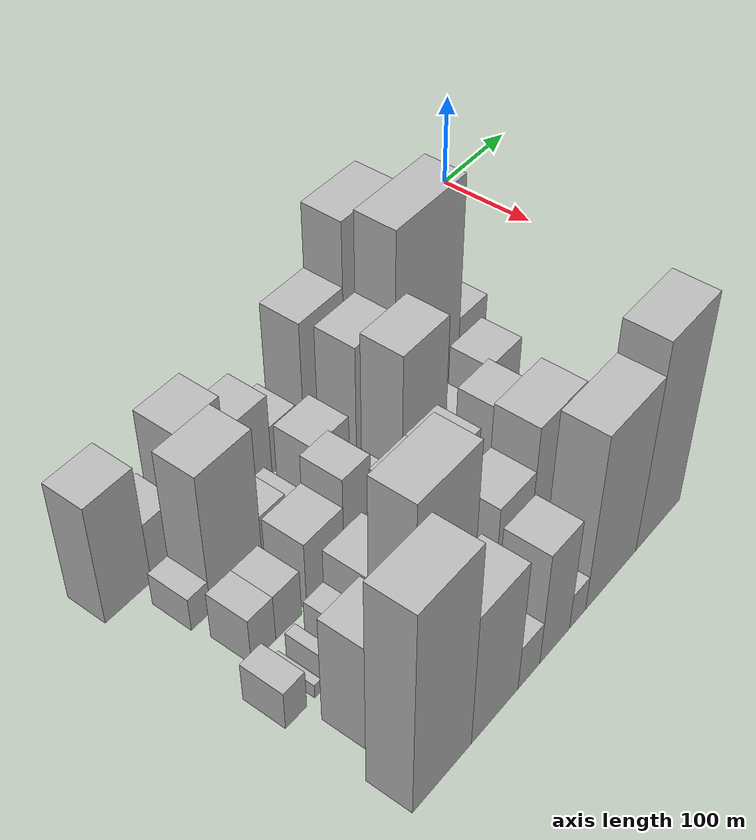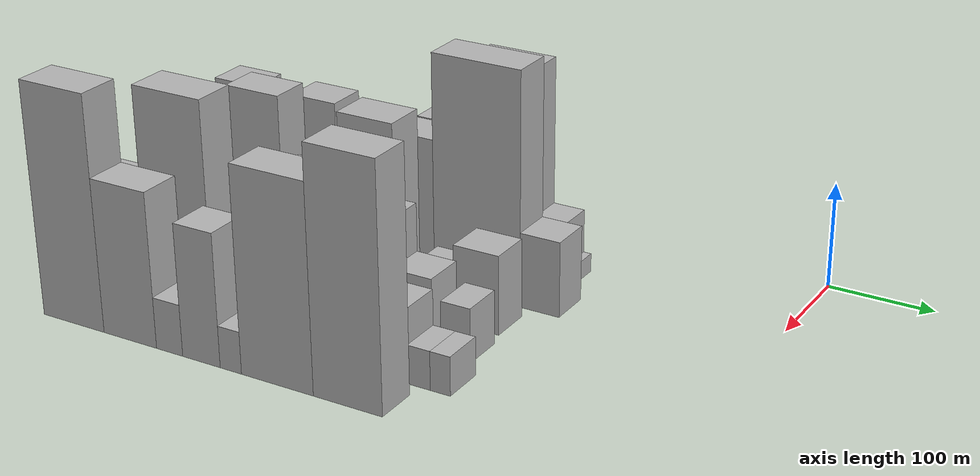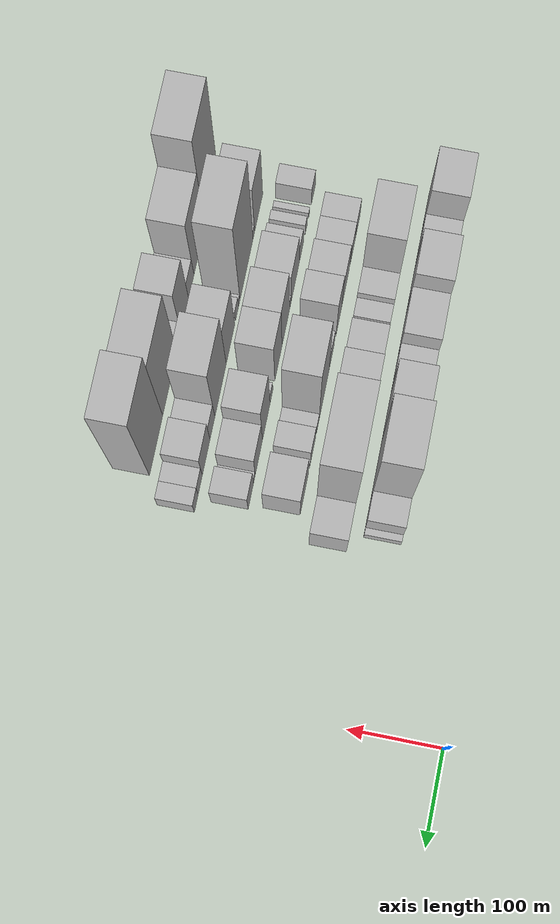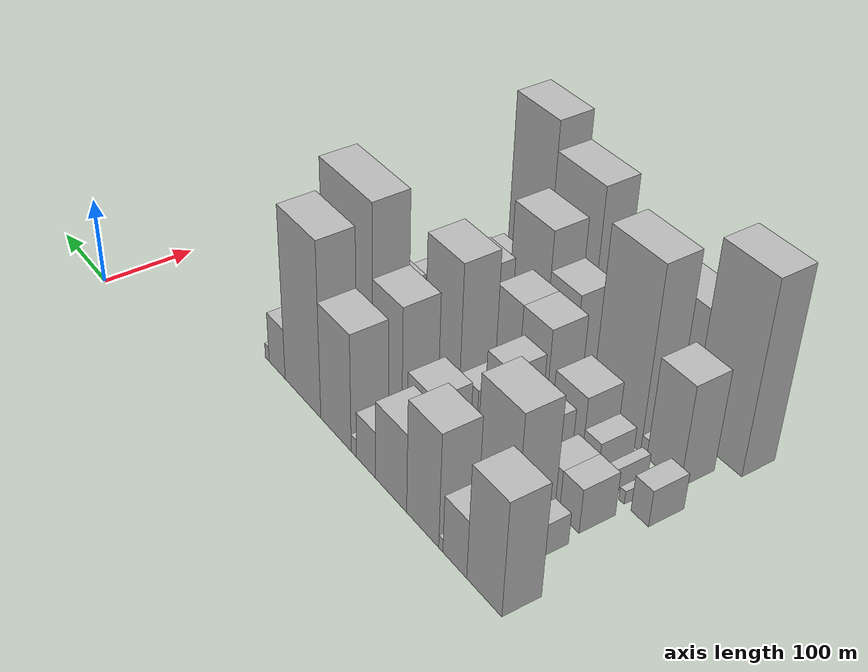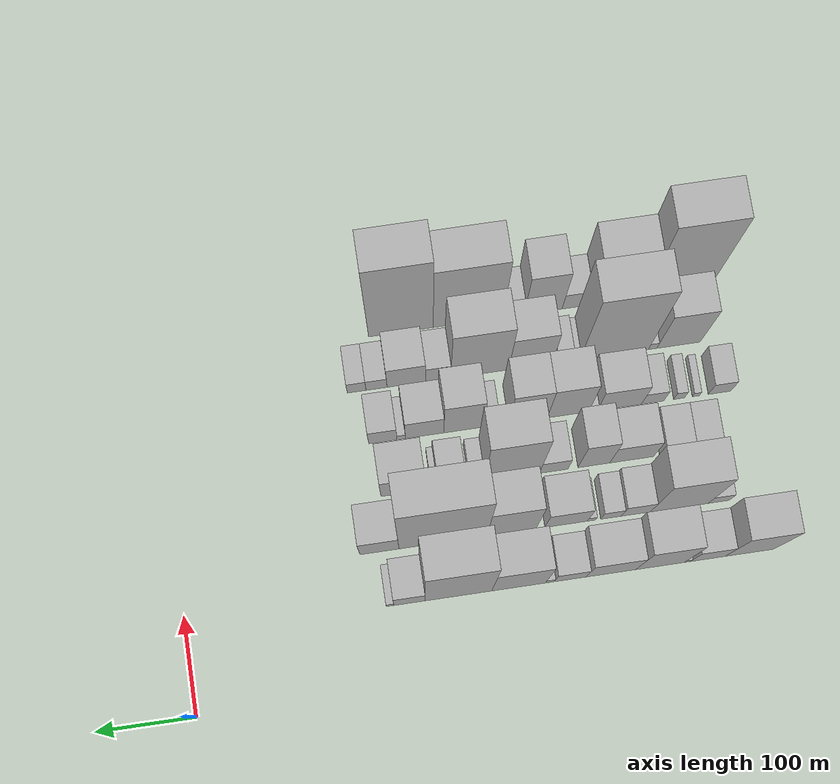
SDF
<sdf version="1.6">
 <world name="default">
  <model name="building_10">
   <static>1</static>
   <pose>100.0000 -564.8110 0 0.000000 0.000000 0.000000</pose>
   <link name="link">
    <pose>0 0 64.50 0 0 0</pose>
    <collision name="collision"><geometry><box><size>40.0000 49.0566 129.0000</size></box></geometry></collision>
    <visual name="visual">
     <cast_shadows>0</cast_shadows>
     <geometry><box><size>40.0000 49.0566 129.0000</size></box></geometry>
     <material>
      <script>
       <uri>model://HANNAS_wall/materials/scripts</uri>
       <uri>model://HANNAS_wall/materials/textures</uri>
       <name>vrc/HANNAS_wall</name>
      </script>
     </material>
    </visual>
   </link>
  </model>
  <model name="building_11">
   <static>1</static>
   <pose>100.0000 -522.8682 0 0.000000 0.000000 0.000000</pose>
   <link name="link">
    <pose>0 0 33.00 0 0 0</pose>
    <collision name="collision"><geometry><box><size>40.0000 34.8290 66.0000</size></box></geometry></collision>
    <visual name="visual">
     <cast_shadows>0</cast_shadows>
     <geometry><box><size>40.0000 34.8290 66.0000</size></box></geometry>
     <material>
      <script>
       <uri>model://HANNAS_wall/materials/scripts</uri>
       <uri>model://HANNAS_wall/materials/textures</uri>
       <name>vrc/HANNAS_wall</name>
      </script>
     </material>
    </visual>
   </link>
  </model>
  <model name="building_12">
   <static>1</static>
   <pose>100.0000 -502.3268 0 0.000000 0.000000 0.000000</pose>
   <link name="link">
    <pose>0 0 7.50 0 0 0</pose>
    <collision name="collision"><geometry><box><size>40.0000 6.2540 15.0000</size></box></geometry></collision>
    <visual name="visual">
     <cast_shadows>0</cast_shadows>
     <geometry><box><size>40.0000 6.2540 15.0000</size></box></geometry>
     <material>
      <script>
       <uri>model://HANNAS_wall/materials/scripts</uri>
       <uri>model://HANNAS_wall/materials/textures</uri>
       <name>vrc/HANNAS_wall</name>
      </script>
     </material>
    </visual>
   </link>
  </model>
  <model name="building_13">
   <static>1</static>
   <pose>100.0000 -474.6514 0 0.000000 0.000000 0.000000</pose>
   <link name="link">
    <pose>0 0 64.50 0 0 0</pose>
    <collision name="collision"><geometry><box><size>40.0000 49.0968 129.0000</size></box></geometry></collision>
    <visual name="visual">
     <cast_shadows>0</cast_shadows>
     <geometry><box><size>40.0000 49.0968 129.0000</size></box></geometry>
     <material>
      <script>
       <uri>model://HANNAS_wall/materials/scripts</uri>
       <uri>model://HANNAS_wall/materials/textures</uri>
       <name>vrc/HANNAS_wall</name>
      </script>
     </material>
    </visual>
   </link>
  </model>
  <model name="building_14">
   <static>1</static>
   <pose>100.0000 -424.9528 0 0.000000 0.000000 0.000000</pose>
   <link name="link">
    <pose>0 0 45.00 0 0 0</pose>
    <collision name="collision"><geometry><box><size>40.0000 50.3003 90.0000</size></box></geometry></collision>
    <visual name="visual">
     <cast_shadows>0</cast_shadows>
     <geometry><box><size>40.0000 50.3003 90.0000</size></box></geometry>
     <material>
      <script>
       <uri>model://HANNAS_wall/materials/scripts</uri>
       <uri>model://HANNAS_wall/materials/textures</uri>
       <name>vrc/HANNAS_wall</name>
      </script>
     </material>
    </visual>
   </link>
  </model>
  <model name="building_15">
   <static>1</static>
   <pose>100.0000 -383.8608 0 0.000000 0.000000 0.000000</pose>
   <link name="link">
    <pose>0 0 27.00 0 0 0</pose>
    <collision name="collision"><geometry><box><size>40.0000 31.8836 54.0000</size></box></geometry></collision>
    <visual name="visual">
     <cast_shadows>0</cast_shadows>
     <geometry><box><size>40.0000 31.8836 54.0000</size></box></geometry>
     <material>
      <script>
       <uri>model://HANNAS_wall/materials/scripts</uri>
       <uri>model://HANNAS_wall/materials/textures</uri>
       <name>vrc/HANNAS_wall</name>
      </script>
     </material>
    </visual>
   </link>
  </model>
  <model name="building_16">
   <static>1</static>
   <pose>100.0000 -363.3936 0 0.000000 0.000000 0.000000</pose>
   <link name="link">
    <pose>0 0 10.50 0 0 0</pose>
    <collision name="collision"><geometry><box><size>40.0000 9.0508 21.0000</size></box></geometry></collision>
    <visual name="visual">
     <cast_shadows>0</cast_shadows>
     <geometry><box><size>40.0000 9.0508 21.0000</size></box></geometry>
     <material>
      <script>
       <uri>model://HANNAS_wall/materials/scripts</uri>
       <uri>model://HANNAS_wall/materials/textures</uri>
       <name>vrc/HANNAS_wall</name>
      </script>
     </material>
    </visual>
   </link>
  </model>
  <model name="building_17">
   <static>1</static>
   <pose>100.0000 -331.9854 0 0.000000 0.000000 0.000000</pose>
   <link name="link">
    <pose>0 0 67.50 0 0 0</pose>
    <collision name="collision"><geometry><box><size>40.0000 53.7657 135.0000</size></box></geometry></collision>
    <visual name="visual">
     <cast_shadows>0</cast_shadows>
     <geometry><box><size>40.0000 53.7657 135.0000</size></box></geometry>
     <material>
      <script>
       <uri>model://HANNAS_wall/materials/scripts</uri>
       <uri>model://HANNAS_wall/materials/textures</uri>
       <name>vrc/HANNAS_wall</name>
      </script>
     </material>
    </visual>
   </link>
  </model>
  <model name="building_18">
   <static>1</static>
   <pose>100.0000 -271.7139 0 0.000000 0.000000 0.000000</pose>
   <link name="link">
    <pose>0 0 100.50 0 0 0</pose>
    <collision name="collision"><geometry><box><size>40.0000 66.7772 201.0000</size></box></geometry></collision>
    <visual name="visual">
     <cast_shadows>0</cast_shadows>
     <geometry><box><size>40.0000 66.7772 201.0000</size></box></geometry>
     <material>
      <script>
       <uri>model://HANNAS_wall/materials/scripts</uri>
       <uri>model://HANNAS_wall/materials/textures</uri>
       <name>vrc/HANNAS_wall</name>
      </script>
     </material>
    </visual>
   </link>
  </model>
  <model name="building_19">
   <static>1</static>
   <pose>100.0000 -222.7142 0 0.000000 0.000000 0.000000</pose>
   <link name="link">
    <pose>0 0 30.00 0 0 0</pose>
    <collision name="collision"><geometry><box><size>40.0000 31.2222 60.0000</size></box></geometry></collision>
    <visual name="visual">
     <cast_shadows>0</cast_shadows>
     <geometry><box><size>40.0000 31.2222 60.0000</size></box></geometry>
     <material>
      <script>
       <uri>model://HANNAS_wall/materials/scripts</uri>
       <uri>model://HANNAS_wall/materials/textures</uri>
       <name>vrc/HANNAS_wall</name>
      </script>
     </material>
    </visual>
   </link>
  </model>
  <model name="building_20">
   <static>1</static>
   <pose>100.0000 -203.2409 0 0.000000 0.000000 0.000000</pose>
   <link name="link">
    <pose>0 0 9.00 0 0 0</pose>
    <collision name="collision"><geometry><box><size>40.0000 7.7245 18.0000</size></box></geometry></collision>
    <visual name="visual">
     <cast_shadows>0</cast_shadows>
     <geometry><box><size>40.0000 7.7245 18.0000</size></box></geometry>
     <material>
      <script>
       <uri>model://HANNAS_wall/materials/scripts</uri>
       <uri>model://HANNAS_wall/materials/textures</uri>
       <name>vrc/HANNAS_wall</name>
      </script>
     </material>
    </visual>
   </link>
  </model>
  <model name="building_58">
   <static>1</static>
   <pose>155.0000 -544.0076 0 0.000000 0.000000 0.000000</pose>
   <link name="link">
    <pose>0 0 18.00 0 0 0</pose>
    <collision name="collision"><geometry><box><size>40.0000 21.3573 36.0000</size></box></geometry></collision>
    <visual name="visual">
     <cast_shadows>0</cast_shadows>
     <geometry><box><size>40.0000 21.3573 36.0000</size></box></geometry>
     <material>
      <script>
       <uri>model://HANNAS_wall/materials/scripts</uri>
       <uri>model://HANNAS_wall/materials/textures</uri>
       <name>vrc/HANNAS_wall</name>
      </script>
     </material>
    </visual>
   </link>
  </model>
  <model name="building_59">
   <static>1</static>
   <pose>155.0000 -503.9129 0 0.000000 0.000000 0.000000</pose>
   <link name="link">
    <pose>0 0 75.00 0 0 0</pose>
    <collision name="collision"><geometry><box><size>40.0000 58.8321 150.0000</size></box></geometry></collision>
    <visual name="visual">
     <cast_shadows>0</cast_shadows>
     <geometry><box><size>40.0000 58.8321 150.0000</size></box></geometry>
     <material>
      <script>
       <uri>model://HANNAS_wall/materials/scripts</uri>
       <uri>model://HANNAS_wall/materials/textures</uri>
       <name>vrc/HANNAS_wall</name>
      </script>
     </material>
    </visual>
   </link>
  </model>
  <model name="building_60">
   <static>1</static>
   <pose>155.0000 -459.6439 0 0.000000 0.000000 0.000000</pose>
   <link name="link">
    <pose>0 0 27.00 0 0 0</pose>
    <collision name="collision"><geometry><box><size>40.0000 29.7060 54.0000</size></box></geometry></collision>
    <visual name="visual">
     <cast_shadows>0</cast_shadows>
     <geometry><box><size>40.0000 29.7060 54.0000</size></box></geometry>
     <material>
      <script>
       <uri>model://HANNAS_wall/materials/scripts</uri>
       <uri>model://HANNAS_wall/materials/textures</uri>
       <name>vrc/HANNAS_wall</name>
      </script>
     </material>
    </visual>
   </link>
  </model>
  <model name="building_61">
   <static>1</static>
   <pose>155.0000 -434.3549 0 0.000000 0.000000 0.000000</pose>
   <link name="link">
    <pose>0 0 19.50 0 0 0</pose>
    <collision name="collision"><geometry><box><size>40.0000 20.8720 39.0000</size></box></geometry></collision>
    <visual name="visual">
     <cast_shadows>0</cast_shadows>
     <geometry><box><size>40.0000 20.8720 39.0000</size></box></geometry>
     <material>
      <script>
       <uri>model://HANNAS_wall/materials/scripts</uri>
       <uri>model://HANNAS_wall/materials/textures</uri>
       <name>vrc/HANNAS_wall</name>
      </script>
     </material>
    </visual>
   </link>
  </model>
  <model name="building_62">
   <static>1</static>
   <pose>155.0000 -414.6668 0 0.000000 0.000000 0.000000</pose>
   <link name="link">
    <pose>0 0 9.00 0 0 0</pose>
    <collision name="collision"><geometry><box><size>40.0000 8.5043 18.0000</size></box></geometry></collision>
    <visual name="visual">
     <cast_shadows>0</cast_shadows>
     <geometry><box><size>40.0000 8.5043 18.0000</size></box></geometry>
     <material>
      <script>
       <uri>model://HANNAS_wall/materials/scripts</uri>
       <uri>model://HANNAS_wall/materials/textures</uri>
       <name>vrc/HANNAS_wall</name>
      </script>
     </material>
    </visual>
   </link>
  </model>
  <model name="building_63">
   <static>1</static>
   <pose>155.0000 -388.8836 0 0.000000 0.000000 0.000000</pose>
   <link name="link">
    <pose>0 0 37.50 0 0 0</pose>
    <collision name="collision"><geometry><box><size>40.0000 43.0620 75.0000</size></box></geometry></collision>
    <visual name="visual">
     <cast_shadows>0</cast_shadows>
     <geometry><box><size>40.0000 43.0620 75.0000</size></box></geometry>
     <material>
      <script>
       <uri>model://HANNAS_wall/materials/scripts</uri>
       <uri>model://HANNAS_wall/materials/textures</uri>
       <name>vrc/HANNAS_wall</name>
      </script>
     </material>
    </visual>
   </link>
  </model>
  <model name="building_64">
   <static>1</static>
   <pose>155.0000 -333.4132 0 0.000000 0.000000 0.000000</pose>
   <link name="link">
    <pose>0 0 70.50 0 0 0</pose>
    <collision name="collision"><geometry><box><size>40.0000 49.8787 141.0000</size></box></geometry></collision>
    <visual name="visual">
     <cast_shadows>0</cast_shadows>
     <geometry><box><size>40.0000 49.8787 141.0000</size></box></geometry>
     <material>
      <script>
       <uri>model://HANNAS_wall/materials/scripts</uri>
       <uri>model://HANNAS_wall/materials/textures</uri>
       <name>vrc/HANNAS_wall</name>
      </script>
     </material>
    </visual>
   </link>
  </model>
  <model name="building_65">
   <static>1</static>
   <pose>155.0000 -264.2904 0 0.000000 0.000000 0.000000</pose>
   <link name="link">
    <pose>0 0 111.00 0 0 0</pose>
    <collision name="collision"><geometry><box><size>40.0000 88.3669 222.0000</size></box></geometry></collision>
    <visual name="visual">
     <cast_shadows>0</cast_shadows>
     <geometry><box><size>40.0000 88.3669 222.0000</size></box></geometry>
     <material>
      <script>
       <uri>model://HANNAS_wall/materials/scripts</uri>
       <uri>model://HANNAS_wall/materials/textures</uri>
       <name>vrc/HANNAS_wall</name>
      </script>
     </material>
    </visual>
   </link>
  </model>
  <model name="building_66">
   <static>1</static>
   <pose>155.0000 -200.4605 0 0.000000 0.000000 0.000000</pose>
   <link name="link">
    <pose>0 0 36.00 0 0 0</pose>
    <collision name="collision"><geometry><box><size>40.0000 39.2930 72.0000</size></box></geometry></collision>
    <visual name="visual">
     <cast_shadows>0</cast_shadows>
     <geometry><box><size>40.0000 39.2930 72.0000</size></box></geometry>
     <material>
      <script>
       <uri>model://HANNAS_wall/materials/scripts</uri>
       <uri>model://HANNAS_wall/materials/textures</uri>
       <name>vrc/HANNAS_wall</name>
      </script>
     </material>
    </visual>
   </link>
  </model>
  <model name="building_112">
   <static>1</static>
   <pose>210.0000 -536.3951 0 0.000000 0.000000 0.000000</pose>
   <link name="link">
    <pose>0 0 25.50 0 0 0</pose>
    <collision name="collision"><geometry><box><size>40.0000 27.2583 51.0000</size></box></geometry></collision>
    <visual name="visual">
     <cast_shadows>0</cast_shadows>
     <geometry><box><size>40.0000 27.2583 51.0000</size></box></geometry>
     <material>
      <script>
       <uri>model://HANNAS_wall/materials/scripts</uri>
       <uri>model://HANNAS_wall/materials/textures</uri>
       <name>vrc/HANNAS_wall</name>
      </script>
     </material>
    </visual>
   </link>
  </model>
  <model name="building_113">
   <static>1</static>
   <pose>210.0000 -507.9648 0 0.000000 0.000000 0.000000</pose>
   <link name="link">
    <pose>0 0 25.50 0 0 0</pose>
    <collision name="collision"><geometry><box><size>40.0000 29.6023 51.0000</size></box></geometry></collision>
    <visual name="visual">
     <cast_shadows>0</cast_shadows>
     <geometry><box><size>40.0000 29.6023 51.0000</size></box></geometry>
     <material>
      <script>
       <uri>model://HANNAS_wall/materials/scripts</uri>
       <uri>model://HANNAS_wall/materials/textures</uri>
       <name>vrc/HANNAS_wall</name>
      </script>
     </material>
    </visual>
   </link>
  </model>
  <model name="building_114">
   <static>1</static>
   <pose>210.0000 -464.7477 0 0.000000 0.000000 0.000000</pose>
   <link name="link">
    <pose>0 0 37.50 0 0 0</pose>
    <collision name="collision"><geometry><box><size>40.0000 44.8319 75.0000</size></box></geometry></collision>
    <visual name="visual">
     <cast_shadows>0</cast_shadows>
     <geometry><box><size>40.0000 44.8319 75.0000</size></box></geometry>
     <material>
      <script>
       <uri>model://HANNAS_wall/materials/scripts</uri>
       <uri>model://HANNAS_wall/materials/textures</uri>
       <name>vrc/HANNAS_wall</name>
      </script>
     </material>
    </visual>
   </link>
  </model>
  <model name="building_115">
   <static>1</static>
   <pose>210.0000 -426.0649 0 0.000000 0.000000 0.000000</pose>
   <link name="link">
    <pose>0 0 52.50 0 0 0</pose>
    <collision name="collision"><geometry><box><size>40.0000 32.5337 105.0000</size></box></geometry></collision>
    <visual name="visual">
     <cast_shadows>0</cast_shadows>
     <geometry><box><size>40.0000 32.5337 105.0000</size></box></geometry>
     <material>
      <script>
       <uri>model://HANNAS_wall/materials/scripts</uri>
       <uri>model://HANNAS_wall/materials/textures</uri>
       <name>vrc/HANNAS_wall</name>
      </script>
     </material>
    </visual>
   </link>
  </model>
  <model name="building_116">
   <static>1</static>
   <pose>210.0000 -385.2003 0 0.000000 0.000000 0.000000</pose>
   <link name="link">
    <pose>0 0 25.50 0 0 0</pose>
    <collision name="collision"><geometry><box><size>40.0000 29.1954 51.0000</size></box></geometry></collision>
    <visual name="visual">
     <cast_shadows>0</cast_shadows>
     <geometry><box><size>40.0000 29.1954 51.0000</size></box></geometry>
     <material>
      <script>
       <uri>model://HANNAS_wall/materials/scripts</uri>
       <uri>model://HANNAS_wall/materials/textures</uri>
       <name>vrc/HANNAS_wall</name>
      </script>
     </material>
    </visual>
   </link>
  </model>
  <model name="building_117">
   <static>1</static>
   <pose>210.0000 -342.4000 0 0.000000 0.000000 0.000000</pose>
   <link name="link">
    <pose>0 0 87.00 0 0 0</pose>
    <collision name="collision"><geometry><box><size>40.0000 56.4052 174.0000</size></box></geometry></collision>
    <visual name="visual">
     <cast_shadows>0</cast_shadows>
     <geometry><box><size>40.0000 56.4052 174.0000</size></box></geometry>
     <material>
      <script>
       <uri>model://HANNAS_wall/materials/scripts</uri>
       <uri>model://HANNAS_wall/materials/textures</uri>
       <name>vrc/HANNAS_wall</name>
      </script>
     </material>
    </visual>
   </link>
  </model>
  <model name="building_118">
   <static>1</static>
   <pose>210.0000 -306.6090 0 0.000000 0.000000 0.000000</pose>
   <link name="link">
    <pose>0 0 15.00 0 0 0</pose>
    <collision name="collision"><geometry><box><size>40.0000 15.1767 30.0000</size></box></geometry></collision>
    <visual name="visual">
     <cast_shadows>0</cast_shadows>
     <geometry><box><size>40.0000 15.1767 30.0000</size></box></geometry>
     <material>
      <script>
       <uri>model://HANNAS_wall/materials/scripts</uri>
       <uri>model://HANNAS_wall/materials/textures</uri>
       <name>vrc/HANNAS_wall</name>
      </script>
     </material>
    </visual>
   </link>
  </model>
  <model name="building_119">
   <static>1</static>
   <pose>210.0000 -281.1561 0 0.000000 0.000000 0.000000</pose>
   <link name="link">
    <pose>0 0 24.00 0 0 0</pose>
    <collision name="collision"><geometry><box><size>40.0000 27.7292 48.0000</size></box></geometry></collision>
    <visual name="visual">
     <cast_shadows>0</cast_shadows>
     <geometry><box><size>40.0000 27.7292 48.0000</size></box></geometry>
     <material>
      <script>
       <uri>model://HANNAS_wall/materials/scripts</uri>
       <uri>model://HANNAS_wall/materials/textures</uri>
       <name>vrc/HANNAS_wall</name>
      </script>
     </material>
    </visual>
   </link>
  </model>
  <model name="building_120">
   <static>1</static>
   <pose>210.0000 -264.0414 0 0.000000 0.000000 0.000000</pose>
   <link name="link">
    <pose>0 0 7.50 0 0 0</pose>
    <collision name="collision"><geometry><box><size>40.0000 6.5001 15.0000</size></box></geometry></collision>
    <visual name="visual">
     <cast_shadows>0</cast_shadows>
     <geometry><box><size>40.0000 6.5001 15.0000</size></box></geometry>
     <material>
      <script>
       <uri>model://HANNAS_wall/materials/scripts</uri>
       <uri>model://HANNAS_wall/materials/textures</uri>
       <name>vrc/HANNAS_wall</name>
      </script>
     </material>
    </visual>
   </link>
  </model>
  <model name="building_121">
   <static>1</static>
   <pose>210.0000 -232.3220 0 0.000000 0.000000 0.000000</pose>
   <link name="link">
    <pose>0 0 37.50 0 0 0</pose>
    <collision name="collision"><geometry><box><size>40.0000 44.9387 75.0000</size></box></geometry></collision>
    <visual name="visual">
     <cast_shadows>0</cast_shadows>
     <geometry><box><size>40.0000 44.9387 75.0000</size></box></geometry>
     <material>
      <script>
       <uri>model://HANNAS_wall/materials/scripts</uri>
       <uri>model://HANNAS_wall/materials/textures</uri>
       <name>vrc/HANNAS_wall</name>
      </script>
     </material>
    </visual>
   </link>
  </model>
  <model name="building_162">
   <static>1</static>
   <pose>265.0000 -564.5190 0 0.000000 0.000000 0.000000</pose>
   <link name="link">
    <pose>0 0 21.00 0 0 0</pose>
    <collision name="collision"><geometry><box><size>40.0000 23.2608 42.0000</size></box></geometry></collision>
    <visual name="visual">
     <cast_shadows>0</cast_shadows>
     <geometry><box><size>40.0000 23.2608 42.0000</size></box></geometry>
     <material>
      <script>
       <uri>model://HANNAS_wall/materials/scripts</uri>
       <uri>model://HANNAS_wall/materials/textures</uri>
       <name>vrc/HANNAS_wall</name>
      </script>
     </material>
    </visual>
   </link>
  </model>
  <model name="building_163">
   <static>1</static>
   <pose>265.0000 -540.1710 0 0.000000 0.000000 0.000000</pose>
   <link name="link">
    <pose>0 0 7.50 0 0 0</pose>
    <collision name="collision"><geometry><box><size>40.0000 7.4352 15.0000</size></box></geometry></collision>
    <visual name="visual">
     <cast_shadows>0</cast_shadows>
     <geometry><box><size>40.0000 7.4352 15.0000</size></box></geometry>
     <material>
      <script>
       <uri>model://HANNAS_wall/materials/scripts</uri>
       <uri>model://HANNAS_wall/materials/textures</uri>
       <name>vrc/HANNAS_wall</name>
      </script>
     </material>
    </visual>
   </link>
  </model>
  <model name="building_164">
   <static>1</static>
   <pose>265.0000 -522.8432 0 0.000000 0.000000 0.000000</pose>
   <link name="link">
    <pose>0 0 13.50 0 0 0</pose>
    <collision name="collision"><geometry><box><size>40.0000 11.2206 27.0000</size></box></geometry></collision>
    <visual name="visual">
     <cast_shadows>0</cast_shadows>
     <geometry><box><size>40.0000 11.2206 27.0000</size></box></geometry>
     <material>
      <script>
       <uri>model://HANNAS_wall/materials/scripts</uri>
       <uri>model://HANNAS_wall/materials/textures</uri>
       <name>vrc/HANNAS_wall</name>
      </script>
     </material>
    </visual>
   </link>
  </model>
  <model name="building_165">
   <static>1</static>
   <pose>265.0000 -495.7396 0 0.000000 0.000000 0.000000</pose>
   <link name="link">
    <pose>0 0 21.00 0 0 0</pose>
    <collision name="collision"><geometry><box><size>40.0000 22.9865 42.0000</size></box></geometry></collision>
    <visual name="visual">
     <cast_shadows>0</cast_shadows>
     <geometry><box><size>40.0000 22.9865 42.0000</size></box></geometry>
     <material>
      <script>
       <uri>model://HANNAS_wall/materials/scripts</uri>
       <uri>model://HANNAS_wall/materials/textures</uri>
       <name>vrc/HANNAS_wall</name>
      </script>
     </material>
    </visual>
   </link>
  </model>
  <model name="building_166">
   <static>1</static>
   <pose>265.0000 -461.5328 0 0.000000 0.000000 0.000000</pose>
   <link name="link">
    <pose>0 0 39.00 0 0 0</pose>
    <collision name="collision"><geometry><box><size>40.0000 45.4272 78.0000</size></box></geometry></collision>
    <visual name="visual">
     <cast_shadows>0</cast_shadows>
     <geometry><box><size>40.0000 45.4272 78.0000</size></box></geometry>
     <material>
      <script>
       <uri>model://HANNAS_wall/materials/scripts</uri>
       <uri>model://HANNAS_wall/materials/textures</uri>
       <name>vrc/HANNAS_wall</name>
      </script>
     </material>
    </visual>
   </link>
  </model>
  <model name="building_167">
   <static>1</static>
   <pose>265.0000 -434.3023 0 0.000000 0.000000 0.000000</pose>
   <link name="link">
    <pose>0 0 10.50 0 0 0</pose>
    <collision name="collision"><geometry><box><size>40.0000 9.0337 21.0000</size></box></geometry></collision>
    <visual name="visual">
     <cast_shadows>0</cast_shadows>
     <geometry><box><size>40.0000 9.0337 21.0000</size></box></geometry>
     <material>
      <script>
       <uri>model://HANNAS_wall/materials/scripts</uri>
       <uri>model://HANNAS_wall/materials/textures</uri>
       <name>vrc/HANNAS_wall</name>
      </script>
     </material>
    </visual>
   </link>
  </model>
  <model name="building_168">
   <static>1</static>
   <pose>265.0000 -408.6261 0 0.000000 0.000000 0.000000</pose>
   <link name="link">
    <pose>0 0 58.50 0 0 0</pose>
    <collision name="collision"><geometry><box><size>40.0000 42.3189 117.0000</size></box></geometry></collision>
    <visual name="visual">
     <cast_shadows>0</cast_shadows>
     <geometry><box><size>40.0000 42.3189 117.0000</size></box></geometry>
     <material>
      <script>
       <uri>model://HANNAS_wall/materials/scripts</uri>
       <uri>model://HANNAS_wall/materials/textures</uri>
       <name>vrc/HANNAS_wall</name>
      </script>
     </material>
    </visual>
   </link>
  </model>
  <model name="building_169">
   <static>1</static>
   <pose>265.0000 -367.7912 0 0.000000 0.000000 0.000000</pose>
   <link name="link">
    <pose>0 0 58.50 0 0 0</pose>
    <collision name="collision"><geometry><box><size>40.0000 39.3509 117.0000</size></box></geometry></collision>
    <visual name="visual">
     <cast_shadows>0</cast_shadows>
     <geometry><box><size>40.0000 39.3509 117.0000</size></box></geometry>
     <material>
      <script>
       <uri>model://HANNAS_wall/materials/scripts</uri>
       <uri>model://HANNAS_wall/materials/textures</uri>
       <name>vrc/HANNAS_wall</name>
      </script>
     </material>
    </visual>
   </link>
  </model>
  <model name="building_170">
   <static>1</static>
   <pose>265.0000 -330.0046 0 0.000000 0.000000 0.000000</pose>
   <link name="link">
    <pose>0 0 15.00 0 0 0</pose>
    <collision name="collision"><geometry><box><size>40.0000 16.2222 30.0000</size></box></geometry></collision>
    <visual name="visual">
     <cast_shadows>0</cast_shadows>
     <geometry><box><size>40.0000 16.2222 30.0000</size></box></geometry>
     <material>
      <script>
       <uri>model://HANNAS_wall/materials/scripts</uri>
       <uri>model://HANNAS_wall/materials/textures</uri>
       <name>vrc/HANNAS_wall</name>
      </script>
     </material>
    </visual>
   </link>
  </model>
  <model name="building_171">
   <static>1</static>
   <pose>265.0000 -301.7068 0 0.000000 0.000000 0.000000</pose>
   <link name="link">
    <pose>0 0 57.00 0 0 0</pose>
    <collision name="collision"><geometry><box><size>40.0000 40.3734 114.0000</size></box></geometry></collision>
    <visual name="visual">
     <cast_shadows>0</cast_shadows>
     <geometry><box><size>40.0000 40.3734 114.0000</size></box></geometry>
     <material>
      <script>
       <uri>model://HANNAS_wall/materials/scripts</uri>
       <uri>model://HANNAS_wall/materials/textures</uri>
       <name>vrc/HANNAS_wall</name>
      </script>
     </material>
    </visual>
   </link>
  </model>
  <model name="building_172">
   <static>1</static>
   <pose>265.0000 -262.0382 0 0.000000 0.000000 0.000000</pose>
   <link name="link">
    <pose>0 0 34.50 0 0 0</pose>
    <collision name="collision"><geometry><box><size>40.0000 38.9636 69.0000</size></box></geometry></collision>
    <visual name="visual">
     <cast_shadows>0</cast_shadows>
     <geometry><box><size>40.0000 38.9636 69.0000</size></box></geometry>
     <material>
      <script>
       <uri>model://HANNAS_wall/materials/scripts</uri>
       <uri>model://HANNAS_wall/materials/textures</uri>
       <name>vrc/HANNAS_wall</name>
      </script>
     </material>
    </visual>
   </link>
  </model>
  <model name="building_173">
   <static>1</static>
   <pose>265.0000 -238.2353 0 0.000000 0.000000 0.000000</pose>
   <link name="link">
    <pose>0 0 9.00 0 0 0</pose>
    <collision name="collision"><geometry><box><size>40.0000 8.6423 18.0000</size></box></geometry></collision>
    <visual name="visual">
     <cast_shadows>0</cast_shadows>
     <geometry><box><size>40.0000 8.6423 18.0000</size></box></geometry>
     <material>
      <script>
       <uri>model://HANNAS_wall/materials/scripts</uri>
       <uri>model://HANNAS_wall/materials/textures</uri>
       <name>vrc/HANNAS_wall</name>
      </script>
     </material>
    </visual>
   </link>
  </model>
  <model name="building_174">
   <static>1</static>
   <pose>265.0000 -219.5655 0 0.000000 0.000000 0.000000</pose>
   <link name="link">
    <pose>0 0 25.50 0 0 0</pose>
    <collision name="collision"><geometry><box><size>40.0000 28.6971 51.0000</size></box></geometry></collision>
    <visual name="visual">
     <cast_shadows>0</cast_shadows>
     <geometry><box><size>40.0000 28.6971 51.0000</size></box></geometry>
     <material>
      <script>
       <uri>model://HANNAS_wall/materials/scripts</uri>
       <uri>model://HANNAS_wall/materials/textures</uri>
       <name>vrc/HANNAS_wall</name>
      </script>
     </material>
    </visual>
   </link>
  </model>
  <model name="building_219">
   <static>1</static>
   <pose>320.0000 -531.9577 0 0.000000 0.000000 0.000000</pose>
   <link name="link">
    <pose>0 0 58.50 0 0 0</pose>
    <collision name="collision"><geometry><box><size>40.0000 44.9900 117.0000</size></box></geometry></collision>
    <visual name="visual">
     <cast_shadows>0</cast_shadows>
     <geometry><box><size>40.0000 44.9900 117.0000</size></box></geometry>
     <material>
      <script>
       <uri>model://HANNAS_wall/materials/scripts</uri>
       <uri>model://HANNAS_wall/materials/textures</uri>
       <name>vrc/HANNAS_wall</name>
      </script>
     </material>
    </visual>
   </link>
  </model>
  <model name="building_220">
   <static>1</static>
   <pose>320.0000 -505.0708 0 0.000000 0.000000 0.000000</pose>
   <link name="link">
    <pose>0 0 10.50 0 0 0</pose>
    <collision name="collision"><geometry><box><size>40.0000 8.7838 21.0000</size></box></geometry></collision>
    <visual name="visual">
     <cast_shadows>0</cast_shadows>
     <geometry><box><size>40.0000 8.7838 21.0000</size></box></geometry>
     <material>
      <script>
       <uri>model://HANNAS_wall/materials/scripts</uri>
       <uri>model://HANNAS_wall/materials/textures</uri>
       <name>vrc/HANNAS_wall</name>
      </script>
     </material>
    </visual>
   </link>
  </model>
  <model name="building_221">
   <static>1</static>
   <pose>320.0000 -465.2967 0 0.000000 0.000000 0.000000</pose>
   <link name="link">
    <pose>0 0 105.00 0 0 0</pose>
    <collision name="collision"><geometry><box><size>40.0000 70.7644 210.0000</size></box></geometry></collision>
    <visual name="visual">
     <cast_shadows>0</cast_shadows>
     <geometry><box><size>40.0000 70.7644 210.0000</size></box></geometry>
     <material>
      <script>
       <uri>model://HANNAS_wall/materials/scripts</uri>
       <uri>model://HANNAS_wall/materials/textures</uri>
       <name>vrc/HANNAS_wall</name>
      </script>
     </material>
    </visual>
   </link>
  </model>
  <model name="building_222">
   <static>1</static>
   <pose>320.0000 -426.2868 0 0.000000 0.000000 0.000000</pose>
   <link name="link">
    <pose>0 0 9.00 0 0 0</pose>
    <collision name="collision"><geometry><box><size>40.0000 7.2555 18.0000</size></box></geometry></collision>
    <visual name="visual">
     <cast_shadows>0</cast_shadows>
     <geometry><box><size>40.0000 7.2555 18.0000</size></box></geometry>
     <material>
      <script>
       <uri>model://HANNAS_wall/materials/scripts</uri>
       <uri>model://HANNAS_wall/materials/textures</uri>
       <name>vrc/HANNAS_wall</name>
      </script>
     </material>
    </visual>
   </link>
  </model>
  <model name="building_223">
   <static>1</static>
   <pose>320.0000 -414.0060 0 0.000000 0.000000 0.000000</pose>
   <link name="link">
    <pose>0 0 15.00 0 0 0</pose>
    <collision name="collision"><geometry><box><size>40.0000 17.3061 30.0000</size></box></geometry></collision>
    <visual name="visual">
     <cast_shadows>0</cast_shadows>
     <geometry><box><size>40.0000 17.3061 30.0000</size></box></geometry>
     <material>
      <script>
       <uri>model://HANNAS_wall/materials/scripts</uri>
       <uri>model://HANNAS_wall/materials/textures</uri>
       <name>vrc/HANNAS_wall</name>
      </script>
     </material>
    </visual>
   </link>
  </model>
  <model name="building_224">
   <static>1</static>
   <pose>320.0000 -378.9393 0 0.000000 0.000000 0.000000</pose>
   <link name="link">
    <pose>0 0 57.00 0 0 0</pose>
    <collision name="collision"><geometry><box><size>40.0000 44.8273 114.0000</size></box></geometry></collision>
    <visual name="visual">
     <cast_shadows>0</cast_shadows>
     <geometry><box><size>40.0000 44.8273 114.0000</size></box></geometry>
     <material>
      <script>
       <uri>model://HANNAS_wall/materials/scripts</uri>
       <uri>model://HANNAS_wall/materials/textures</uri>
       <name>vrc/HANNAS_wall</name>
      </script>
     </material>
    </visual>
   </link>
  </model>
  <model name="building_225">
   <static>1</static>
   <pose>320.0000 -326.6681 0 0.000000 0.000000 0.000000</pose>
   <link name="link">
    <pose>0 0 79.50 0 0 0</pose>
    <collision name="collision"><geometry><box><size>40.0000 59.7150 159.0000</size></box></geometry></collision>
    <visual name="visual">
     <cast_shadows>0</cast_shadows>
     <geometry><box><size>40.0000 59.7150 159.0000</size></box></geometry>
     <material>
      <script>
       <uri>model://HANNAS_wall/materials/scripts</uri>
       <uri>model://HANNAS_wall/materials/textures</uri>
       <name>vrc/HANNAS_wall</name>
      </script>
     </material>
    </visual>
   </link>
  </model>
  <model name="building_226">
   <static>1</static>
   <pose>320.0000 -284.0199 0 0.000000 0.000000 0.000000</pose>
   <link name="link">
    <pose>0 0 25.50 0 0 0</pose>
    <collision name="collision"><geometry><box><size>40.0000 25.5814 51.0000</size></box></geometry></collision>
    <visual name="visual">
     <cast_shadows>0</cast_shadows>
     <geometry><box><size>40.0000 25.5814 51.0000</size></box></geometry>
     <material>
      <script>
       <uri>model://HANNAS_wall/materials/scripts</uri>
       <uri>model://HANNAS_wall/materials/textures</uri>
       <name>vrc/HANNAS_wall</name>
      </script>
     </material>
    </visual>
   </link>
  </model>
  <model name="building_227">
   <static>1</static>
   <pose>320.0000 -251.4987 0 0.000000 0.000000 0.000000</pose>
   <link name="link">
    <pose>0 0 34.50 0 0 0</pose>
    <collision name="collision"><geometry><box><size>40.0000 39.4610 69.0000</size></box></geometry></collision>
    <visual name="visual">
     <cast_shadows>0</cast_shadows>
     <geometry><box><size>40.0000 39.4610 69.0000</size></box></geometry>
     <material>
      <script>
       <uri>model://HANNAS_wall/materials/scripts</uri>
       <uri>model://HANNAS_wall/materials/textures</uri>
       <name>vrc/HANNAS_wall</name>
      </script>
     </material>
    </visual>
   </link>
  </model>
  <model name="building_228">
   <static>1</static>
   <pose>320.0000 -221.0142 0 0.000000 0.000000 0.000000</pose>
   <link name="link">
    <pose>0 0 18.00 0 0 0</pose>
    <collision name="collision"><geometry><box><size>40.0000 21.5082 36.0000</size></box></geometry></collision>
    <visual name="visual">
     <cast_shadows>0</cast_shadows>
     <geometry><box><size>40.0000 21.5082 36.0000</size></box></geometry>
     <material>
      <script>
       <uri>model://HANNAS_wall/materials/scripts</uri>
       <uri>model://HANNAS_wall/materials/textures</uri>
       <name>vrc/HANNAS_wall</name>
      </script>
     </material>
    </visual>
   </link>
  </model>
  <model name="building_229">
   <static>1</static>
   <pose>320.0000 -200.6800 0 0.000000 0.000000 0.000000</pose>
   <link name="link">
    <pose>0 0 18.00 0 0 0</pose>
    <collision name="collision"><geometry><box><size>40.0000 19.1601 36.0000</size></box></geometry></collision>
    <visual name="visual">
     <cast_shadows>0</cast_shadows>
     <geometry><box><size>40.0000 19.1601 36.0000</size></box></geometry>
     <material>
      <script>
       <uri>model://HANNAS_wall/materials/scripts</uri>
       <uri>model://HANNAS_wall/materials/textures</uri>
       <name>vrc/HANNAS_wall</name>
      </script>
     </material>
    </visual>
   </link>
  </model>
  <model name="building_271">
   <static>1</static>
   <pose>375.0000 -539.8043 0 0.000000 0.000000 0.000000</pose>
   <link name="link">
    <pose>0 0 109.50 0 0 0</pose>
    <collision name="collision"><geometry><box><size>40.0000 67.7880 219.0000</size></box></geometry></collision>
    <visual name="visual">
     <cast_shadows>0</cast_shadows>
     <geometry><box><size>40.0000 67.7880 219.0000</size></box></geometry>
     <material>
      <script>
       <uri>model://HANNAS_wall/materials/scripts</uri>
       <uri>model://HANNAS_wall/materials/textures</uri>
       <name>vrc/HANNAS_wall</name>
      </script>
     </material>
    </visual>
   </link>
  </model>
  <model name="building_272">
   <static>1</static>
   <pose>375.0000 -477.1894 0 0.000000 0.000000 0.000000</pose>
   <link name="link">
    <pose>0 0 72.00 0 0 0</pose>
    <collision name="collision"><geometry><box><size>40.0000 57.4417 144.0000</size></box></geometry></collision>
    <visual name="visual">
     <cast_shadows>0</cast_shadows>
     <geometry><box><size>40.0000 57.4417 144.0000</size></box></geometry>
     <material>
      <script>
       <uri>model://HANNAS_wall/materials/scripts</uri>
       <uri>model://HANNAS_wall/materials/textures</uri>
       <name>vrc/HANNAS_wall</name>
      </script>
     </material>
    </visual>
   </link>
  </model>
  <model name="building_273">
   <static>1</static>
   <pose>375.0000 -434.4954 0 0.000000 0.000000 0.000000</pose>
   <link name="link">
    <pose>0 0 24.00 0 0 0</pose>
    <collision name="collision"><geometry><box><size>40.0000 27.9464 48.0000</size></box></geometry></collision>
    <visual name="visual">
     <cast_shadows>0</cast_shadows>
     <geometry><box><size>40.0000 27.9464 48.0000</size></box></geometry>
     <material>
      <script>
       <uri>model://HANNAS_wall/materials/scripts</uri>
       <uri>model://HANNAS_wall/materials/textures</uri>
       <name>vrc/HANNAS_wall</name>
      </script>
     </material>
    </visual>
   </link>
  </model>
  <model name="building_274">
   <static>1</static>
   <pose>375.0000 -400.8636 0 0.000000 0.000000 0.000000</pose>
   <link name="link">
    <pose>0 0 61.50 0 0 0</pose>
    <collision name="collision"><geometry><box><size>40.0000 39.3173 123.0000</size></box></geometry></collision>
    <visual name="visual">
     <cast_shadows>0</cast_shadows>
     <geometry><box><size>40.0000 39.3173 123.0000</size></box></geometry>
     <material>
      <script>
       <uri>model://HANNAS_wall/materials/scripts</uri>
       <uri>model://HANNAS_wall/materials/textures</uri>
       <name>vrc/HANNAS_wall</name>
      </script>
     </material>
    </visual>
   </link>
  </model>
  <model name="building_275">
   <static>1</static>
   <pose>375.0000 -370.2345 0 0.000000 0.000000 0.000000</pose>
   <link name="link">
    <pose>0 0 19.50 0 0 0</pose>
    <collision name="collision"><geometry><box><size>40.0000 21.9408 39.0000</size></box></geometry></collision>
    <visual name="visual">
     <cast_shadows>0</cast_shadows>
     <geometry><box><size>40.0000 21.9408 39.0000</size></box></geometry>
     <material>
      <script>
       <uri>model://HANNAS_wall/materials/scripts</uri>
       <uri>model://HANNAS_wall/materials/textures</uri>
       <name>vrc/HANNAS_wall</name>
      </script>
     </material>
    </visual>
   </link>
  </model>
  <model name="building_276">
   <static>1</static>
   <pose>375.0000 -323.2157 0 0.000000 0.000000 0.000000</pose>
   <link name="link">
    <pose>0 0 94.50 0 0 0</pose>
    <collision name="collision"><geometry><box><size>40.0000 72.0968 189.0000</size></box></geometry></collision>
    <visual name="visual">
     <cast_shadows>0</cast_shadows>
     <geometry><box><size>40.0000 72.0968 189.0000</size></box></geometry>
     <material>
      <script>
       <uri>model://HANNAS_wall/materials/scripts</uri>
       <uri>model://HANNAS_wall/materials/textures</uri>
       <name>vrc/HANNAS_wall</name>
      </script>
     </material>
    </visual>
   </link>
  </model>
  <model name="building_277">
   <static>1</static>
   <pose>375.0000 -253.8600 0 0.000000 0.000000 0.000000</pose>
   <link name="link">
    <pose>0 0 111.00 0 0 0</pose>
    <collision name="collision"><geometry><box><size>40.0000 66.6146 222.0000</size></box></geometry></collision>
    <visual name="visual">
     <cast_shadows>0</cast_shadows>
     <geometry><box><size>40.0000 66.6146 222.0000</size></box></geometry>
     <material>
      <script>
       <uri>model://HANNAS_wall/materials/scripts</uri>
       <uri>model://HANNAS_wall/materials/textures</uri>
       <name>vrc/HANNAS_wall</name>
      </script>
     </material>
    </visual>
   </link>
  </model>
 </world>
</sdf>
